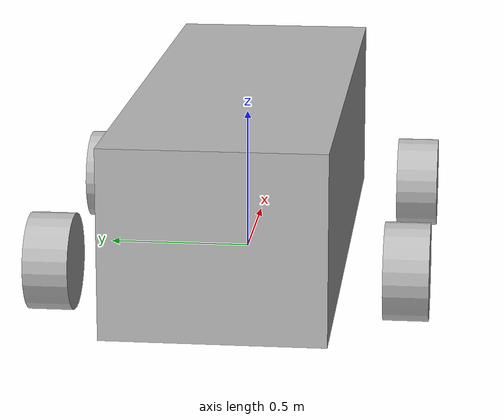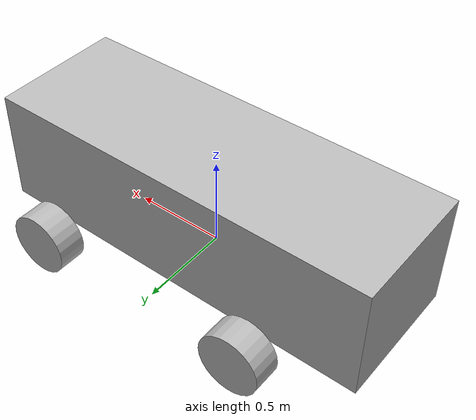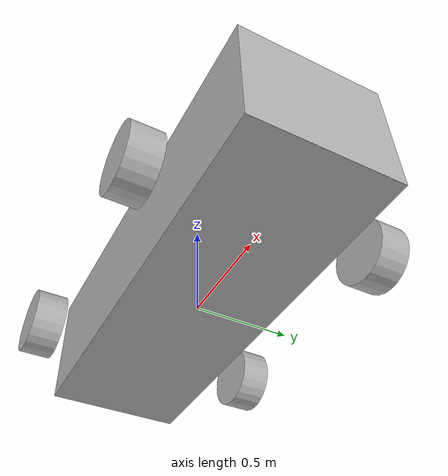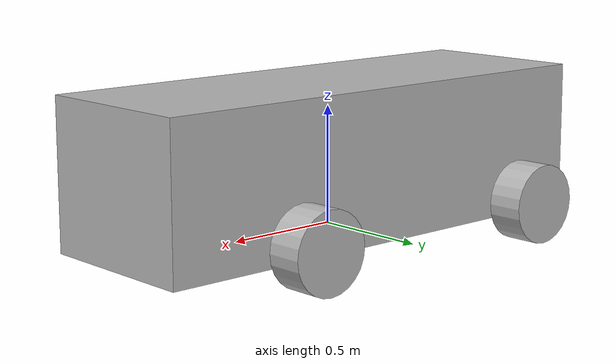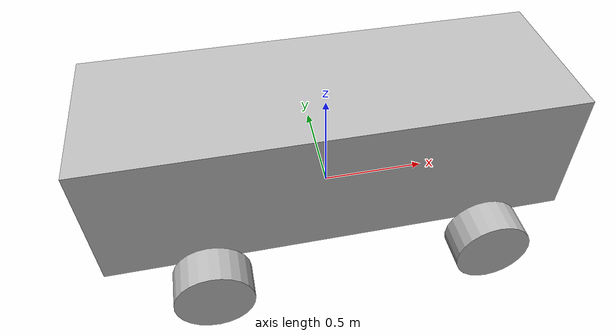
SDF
<?xml version='1.0'?>
<sdf version='1.6'>
  <model name="qev2">
    <link name='chassis'>
      <pose>0 0 .3 0 0 0</pose>
    <inertial>
        <mass>46</mass>
        <inertia>
          <ixx>3.5923125</ixx>
          <iyy>19.4891458333</iyy>
          <izz>20.0385583333</izz>
          <ixy>0</ixy>
          <ixz>0</ixz>
          <iyz>0</iyz>
        </inertia>
      </inertial>
      <collision name='collision'>
        <geometry>
	  <box>
	    <size>2.165 0.735 0.63</size>
	  </box>
	</geometry>
      </collision>

      <visual name='visual'>
        <geometry>
	  <box>
	    <size>2.165 0.735 0.63</size>
	  </box>
        </geometry>
      </visual>
    </link>

<!-- red = y, green = z, blue = x -->

    <link name='left_rear_wheel'>
      <pose>0.6 -0.6 0.1 0 1.5707 1.5707</pose>
      <inertial>
        <mass>3</mass>
        <inertia>
          <ixx>0.0262499475</ixx>
          <iyy>0.0262499475</iyy>
          <izz>0.040887015</izz>
          <ixy>0</ixy>
          <ixz>0</ixz>
          <iyz>0</iyz>
        </inertia>
      </inertial>
        <collision name='collision'>
          <geometry>
            <cylinder>
              <radius>.1651</radius>
                <length>.1524</length>
            </cylinder>
          </geometry>
        </collision>
        <visual name='visual'>
          <geometry>
            <cylinder>
              <radius>.1651</radius>
                <length>.1524</length>
            </cylinder>
          </geometry>
        </visual>
      </link>

      <joint type="revolute" name="joint_lr">
        <pose>0 0 0 0 1.5707 1.5707</pose>
	<parent>chassis</parent>
	<child>left_rear_wheel</child>
	<axis>
	  <xyz>1 0 0</xyz>
	<dynamics>

	</dynamics>
        </axis>
      </joint>

    <link name='right_rear_wheel'>
      <pose>0.6 0.6 0.1 0 1.5707 1.5707</pose>
      <inertial>
        <mass>3</mass>
        <inertia>
          <ixx>0.0262499475</ixx>
          <iyy>0.0262499475</iyy>
          <izz>0.040887015</izz>
          <ixy>0</ixy>
          <ixz>0</ixz>
          <iyz>0</iyz>
        </inertia>
      </inertial>
        <collision name='collision'>
          <geometry>
            <cylinder>
              <radius>.1651</radius>
                <length>.1524</length>
            </cylinder>
          </geometry>
        </collision>
        <visual name='visual'>
          <geometry>
            <cylinder>
              <radius>.1651</radius>
                <length>.1524</length>
            </cylinder>
          </geometry>
        </visual>
     </link>

      <joint type="revolute" name="joint_rr">
      <pose>0 0 0 0 1.5707 1.5707</pose>
	<parent>chassis</parent>
	<child>right_rear_wheel</child>
	<axis>
	  <xyz>1 0 0</xyz>
	</axis>
	<dynamics>
	</dynamics>
      </joint>

    <link name='left_front_wheel'>
      <pose>-0.6 -0.6 0.1 0 1.5707 1.5707</pose>
      <inertial>
        <mass>3</mass>
        <inertia>
          <ixx>0.0262499475</ixx>
          <iyy>0.0262499475</iyy>
          <izz>0.040887015</izz>
          <ixy>0</ixy>
          <ixz>0</ixz>
          <iyz>0</iyz>
        </inertia>
      </inertial>
        <collision name='collision'>
          <geometry>
            <cylinder>
              <radius>.1651</radius>
                <length>.1524</length>
            </cylinder>
          </geometry>
        </collision>
        <visual name='visual'>
          <geometry>
            <cylinder>
              <radius>.1651</radius>
                <length>.1524</length>
            </cylinder>
          </geometry>
        </visual>
     </link>

      <joint type="revolute" name="joint_lf">
      <pose>0 0 0 0 1.5707 1.5707</pose>
	<parent>chassis</parent>
	<child>left_front_wheel</child>
	<axis>
	  <xyz>1 0 0</xyz>
	</axis>
	<dynamics>
	</dynamics>
      </joint>

    <link name='right_front_wheel'>
      <pose>-0.6 0.6 0.1 0 1.5707 1.5707</pose>
      <inertial>
        <mass>3</mass>
        <inertia>
          <ixx>0.0262499475</ixx>
          <iyy>0.0262499475</iyy>
          <izz>0.040887015</izz>
          <ixy>0</ixy>
          <ixz>0</ixz>
          <iyz>0</iyz>
        </inertia>
      </inertial>
        <collision name='collision'>
          <geometry>
            <cylinder>
              <radius>.1651</radius>
                <length>.1524</length>
            </cylinder>
          </geometry>
        </collision>
        <visual name='visual'>
          <geometry>
            <cylinder>
              <radius>.1651</radius>
                <length>.1524</length>
            </cylinder>
          </geometry>
        </visual>
     </link>

      <joint type="revolute" name="joint_rf">
      <pose>0 0 0 0 1.5707 1.5707</pose>
	<parent>chassis</parent>
	<child>right_front_wheel</child>
	<axis>
	  <xyz>1 0 0</xyz>
	</axis>
	<dynamics>
	</dynamics>
      </joint>

  </model>
</sdf>
